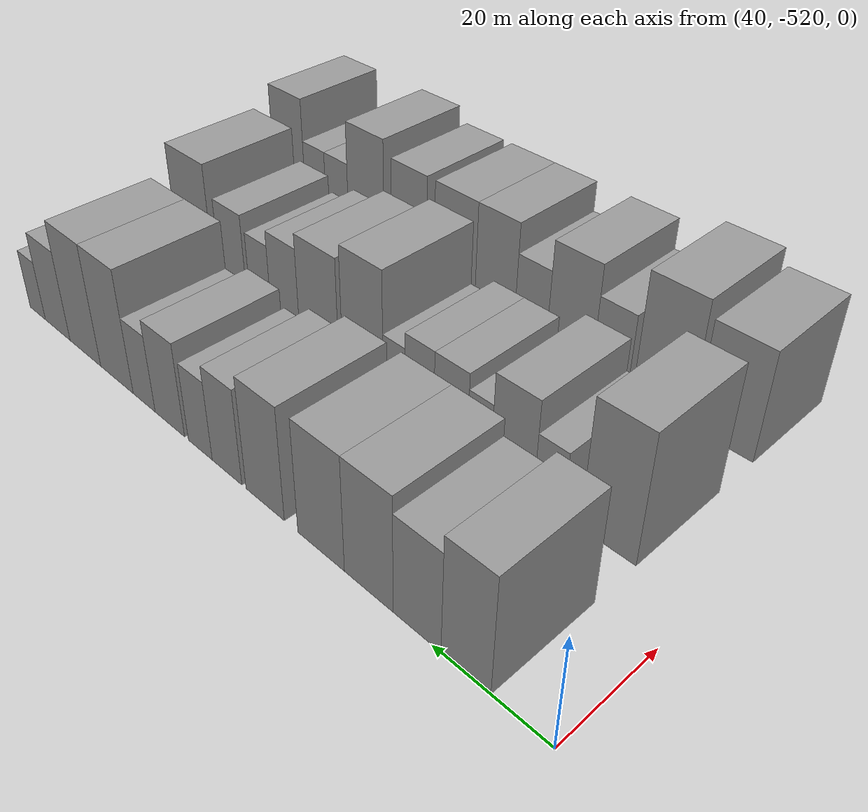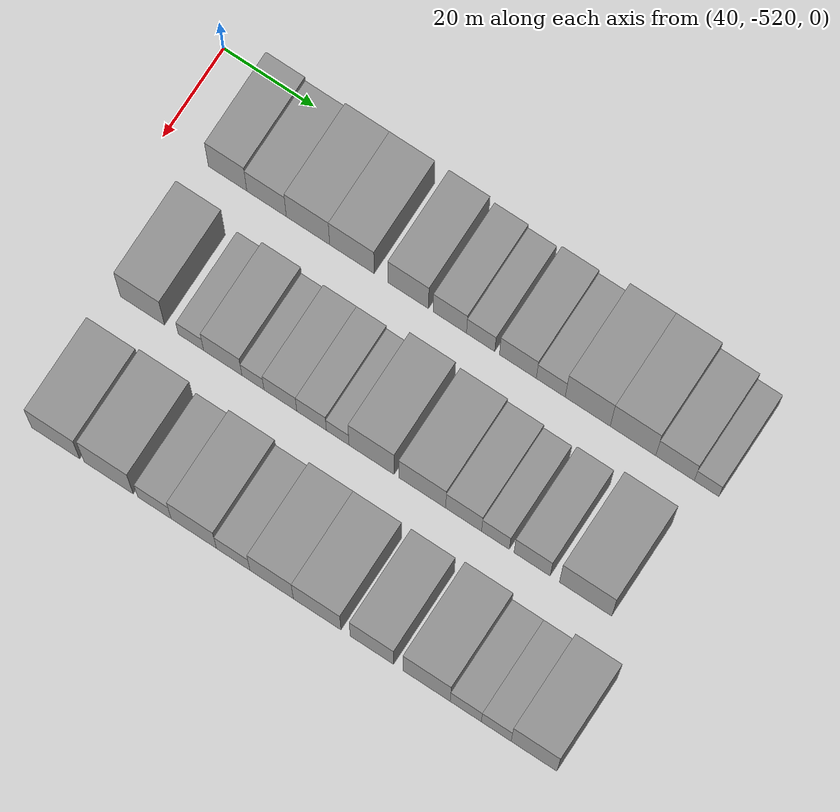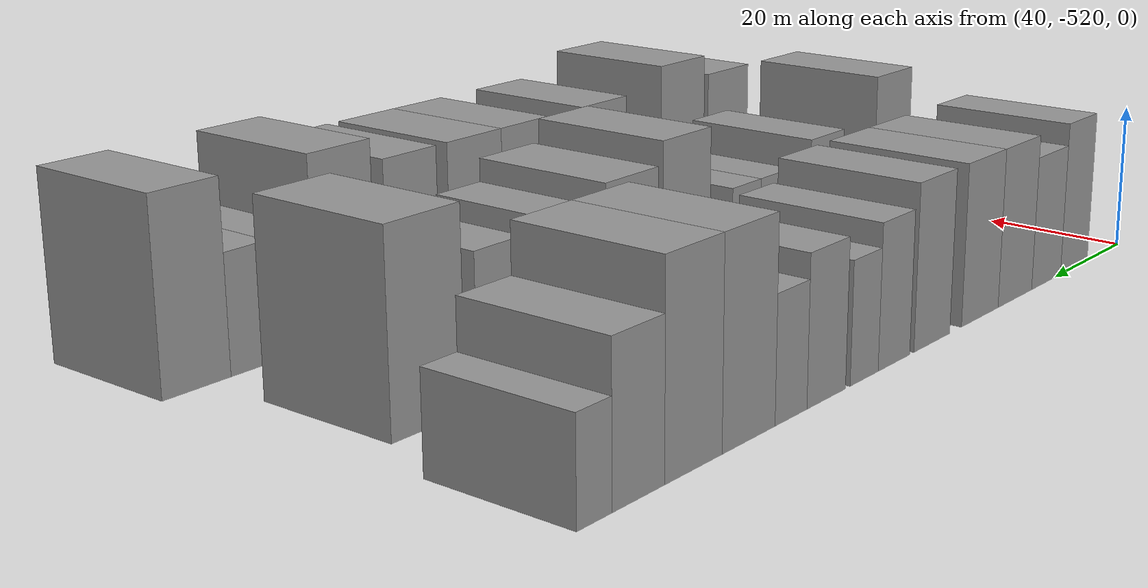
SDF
<sdf version="1.6">
 <world name="default">
  <model name="building_1">
   <static>1</static>
   <pose>50.0000 -505.7804 0 0.000000 0.000000 0.000000</pose>
   <link name="link">
    <pose>0 0 10.50 0 0 0</pose>
    <collision name="collision"><geometry><box><size>20.0000 8.4392 21.0000</size></box></geometry></collision>
    <visual name="visual">
     <cast_shadows>0</cast_shadows>
     <geometry><box><size>20.0000 8.4392 21.0000</size></box></geometry>
     <material>
      <script>
       <uri>model://grey_wall/materials/scripts</uri>
       <uri>model://grey_wall/materials/textures</uri>
       <name>vrc/grey_wall</name>
      </script>
     </material>
    </visual>
   </link>
  </model>
  <model name="building_2">
   <static>1</static>
   <pose>50.0000 -497.2267 0 0.000000 0.000000 0.000000</pose>
   <link name="link">
    <pose>0 0 9.00 0 0 0</pose>
    <collision name="collision"><geometry><box><size>20.0000 8.6683 18.0000</size></box></geometry></collision>
    <visual name="visual">
     <cast_shadows>0</cast_shadows>
     <geometry><box><size>20.0000 8.6683 18.0000</size></box></geometry>
     <material>
      <script>
       <uri>model://grey_wall/materials/scripts</uri>
       <uri>model://grey_wall/materials/textures</uri>
       <name>vrc/grey_wall</name>
      </script>
     </material>
    </visual>
   </link>
  </model>
  <model name="building_3">
   <static>1</static>
   <pose>50.0000 -488.1302 0 0.000000 0.000000 0.000000</pose>
   <link name="link">
    <pose>0 0 10.50 0 0 0</pose>
    <collision name="collision"><geometry><box><size>20.0000 9.5248 21.0000</size></box></geometry></collision>
    <visual name="visual">
     <cast_shadows>0</cast_shadows>
     <geometry><box><size>20.0000 9.5248 21.0000</size></box></geometry>
     <material>
      <script>
       <uri>model://grey_wall/materials/scripts</uri>
       <uri>model://grey_wall/materials/textures</uri>
       <name>vrc/grey_wall</name>
      </script>
     </material>
    </visual>
   </link>
  </model>
  <model name="building_4">
   <static>1</static>
   <pose>50.0000 -478.4753 0 0.000000 0.000000 0.000000</pose>
   <link name="link">
    <pose>0 0 10.50 0 0 0</pose>
    <collision name="collision"><geometry><box><size>20.0000 9.7850 21.0000</size></box></geometry></collision>
    <visual name="visual">
     <cast_shadows>0</cast_shadows>
     <geometry><box><size>20.0000 9.7850 21.0000</size></box></geometry>
     <material>
      <script>
       <uri>model://grey_wall/materials/scripts</uri>
       <uri>model://grey_wall/materials/textures</uri>
       <name>vrc/grey_wall</name>
      </script>
     </material>
    </visual>
   </link>
  </model>
  <model name="building_5">
   <static>1</static>
   <pose>50.0000 -466.1698 0 0.000000 0.000000 0.000000</pose>
   <link name="link">
    <pose>0 0 10.50 0 0 0</pose>
    <collision name="collision"><geometry><box><size>20.0000 8.8261 21.0000</size></box></geometry></collision>
    <visual name="visual">
     <cast_shadows>0</cast_shadows>
     <geometry><box><size>20.0000 8.8261 21.0000</size></box></geometry>
     <material>
      <script>
       <uri>model://grey_wall/materials/scripts</uri>
       <uri>model://grey_wall/materials/textures</uri>
       <name>vrc/grey_wall</name>
      </script>
     </material>
    </visual>
   </link>
  </model>
  <model name="building_6">
   <static>1</static>
   <pose>50.0000 -457.1109 0 0.000000 0.000000 0.000000</pose>
   <link name="link">
    <pose>0 0 9.00 0 0 0</pose>
    <collision name="collision"><geometry><box><size>20.0000 7.2916 18.0000</size></box></geometry></collision>
    <visual name="visual">
     <cast_shadows>0</cast_shadows>
     <geometry><box><size>20.0000 7.2916 18.0000</size></box></geometry>
     <material>
      <script>
       <uri>model://grey_wall/materials/scripts</uri>
       <uri>model://grey_wall/materials/textures</uri>
       <name>vrc/grey_wall</name>
      </script>
     </material>
    </visual>
   </link>
  </model>
  <model name="building_7">
   <static>1</static>
   <pose>50.0000 -450.3802 0 0.000000 0.000000 0.000000</pose>
   <link name="link">
    <pose>0 0 7.50 0 0 0</pose>
    <collision name="collision"><geometry><box><size>20.0000 6.1699 15.0000</size></box></geometry></collision>
    <visual name="visual">
     <cast_shadows>0</cast_shadows>
     <geometry><box><size>20.0000 6.1699 15.0000</size></box></geometry>
     <material>
      <script>
       <uri>model://grey_wall/materials/scripts</uri>
       <uri>model://grey_wall/materials/textures</uri>
       <name>vrc/grey_wall</name>
      </script>
     </material>
    </visual>
   </link>
  </model>
  <model name="building_8">
   <static>1</static>
   <pose>50.0000 -442.2879 0 0.000000 0.000000 0.000000</pose>
   <link name="link">
    <pose>0 0 9.00 0 0 0</pose>
    <collision name="collision"><geometry><box><size>20.0000 8.0148 18.0000</size></box></geometry></collision>
    <visual name="visual">
     <cast_shadows>0</cast_shadows>
     <geometry><box><size>20.0000 8.0148 18.0000</size></box></geometry>
     <material>
      <script>
       <uri>model://grey_wall/materials/scripts</uri>
       <uri>model://grey_wall/materials/textures</uri>
       <name>vrc/grey_wall</name>
      </script>
     </material>
    </visual>
   </link>
  </model>
  <model name="building_9">
   <static>1</static>
   <pose>50.0000 -435.1372 0 0.000000 0.000000 0.000000</pose>
   <link name="link">
    <pose>0 0 7.50 0 0 0</pose>
    <collision name="collision"><geometry><box><size>20.0000 6.2867 15.0000</size></box></geometry></collision>
    <visual name="visual">
     <cast_shadows>0</cast_shadows>
     <geometry><box><size>20.0000 6.2867 15.0000</size></box></geometry>
     <material>
      <script>
       <uri>model://grey_wall/materials/scripts</uri>
       <uri>model://grey_wall/materials/textures</uri>
       <name>vrc/grey_wall</name>
      </script>
     </material>
    </visual>
   </link>
  </model>
  <model name="building_10">
   <static>1</static>
   <pose>50.0000 -427.0935 0 0.000000 0.000000 0.000000</pose>
   <link name="link">
    <pose>0 0 12.00 0 0 0</pose>
    <collision name="collision"><geometry><box><size>20.0000 9.8006 24.0000</size></box></geometry></collision>
    <visual name="visual">
     <cast_shadows>0</cast_shadows>
     <geometry><box><size>20.0000 9.8006 24.0000</size></box></geometry>
     <material>
      <script>
       <uri>model://grey_wall/materials/scripts</uri>
       <uri>model://grey_wall/materials/textures</uri>
       <name>vrc/grey_wall</name>
      </script>
     </material>
    </visual>
   </link>
  </model>
  <model name="building_11">
   <static>1</static>
   <pose>50.0000 -417.2737 0 0.000000 0.000000 0.000000</pose>
   <link name="link">
    <pose>0 0 12.00 0 0 0</pose>
    <collision name="collision"><geometry><box><size>20.0000 9.8390 24.0000</size></box></geometry></collision>
    <visual name="visual">
     <cast_shadows>0</cast_shadows>
     <geometry><box><size>20.0000 9.8390 24.0000</size></box></geometry>
     <material>
      <script>
       <uri>model://grey_wall/materials/scripts</uri>
       <uri>model://grey_wall/materials/textures</uri>
       <name>vrc/grey_wall</name>
      </script>
     </material>
    </visual>
   </link>
  </model>
  <model name="building_12">
   <static>1</static>
   <pose>50.0000 -408.1813 0 0.000000 0.000000 0.000000</pose>
   <link name="link">
    <pose>0 0 9.00 0 0 0</pose>
    <collision name="collision"><geometry><box><size>20.0000 8.3459 18.0000</size></box></geometry></collision>
    <visual name="visual">
     <cast_shadows>0</cast_shadows>
     <geometry><box><size>20.0000 8.3459 18.0000</size></box></geometry>
     <material>
      <script>
       <uri>model://grey_wall/materials/scripts</uri>
       <uri>model://grey_wall/materials/textures</uri>
       <name>vrc/grey_wall</name>
      </script>
     </material>
    </visual>
   </link>
  </model>
  <model name="building_13">
   <static>1</static>
   <pose>50.0000 -401.3410 0 0.000000 0.000000 0.000000</pose>
   <link name="link">
    <pose>0 0 6.00 0 0 0</pose>
    <collision name="collision"><geometry><box><size>20.0000 5.3347 12.0000</size></box></geometry></collision>
    <visual name="visual">
     <cast_shadows>0</cast_shadows>
     <geometry><box><size>20.0000 5.3347 12.0000</size></box></geometry>
     <material>
      <script>
       <uri>model://grey_wall/materials/scripts</uri>
       <uri>model://grey_wall/materials/textures</uri>
       <name>vrc/grey_wall</name>
      </script>
     </material>
    </visual>
   </link>
  </model>
  <model name="building_113">
   <static>1</static>
   <pose>79.0000 -505.1575 0 0.000000 0.000000 0.000000</pose>
   <link name="link">
    <pose>0 0 12.00 0 0 0</pose>
    <collision name="collision"><geometry><box><size>20.0000 9.6850 24.0000</size></box></geometry></collision>
    <visual name="visual">
     <cast_shadows>0</cast_shadows>
     <geometry><box><size>20.0000 9.6850 24.0000</size></box></geometry>
     <material>
      <script>
       <uri>model://grey_wall/materials/scripts</uri>
       <uri>model://grey_wall/materials/textures</uri>
       <name>vrc/grey_wall</name>
      </script>
     </material>
    </visual>
   </link>
  </model>
  <model name="building_114">
   <static>1</static>
   <pose>79.0000 -494.5348 0 0.000000 0.000000 0.000000</pose>
   <link name="link">
    <pose>0 0 6.00 0 0 0</pose>
    <collision name="collision"><geometry><box><size>20.0000 5.5605 12.0000</size></box></geometry></collision>
    <visual name="visual">
     <cast_shadows>0</cast_shadows>
     <geometry><box><size>20.0000 5.5605 12.0000</size></box></geometry>
     <material>
      <script>
       <uri>model://grey_wall/materials/scripts</uri>
       <uri>model://grey_wall/materials/textures</uri>
       <name>vrc/grey_wall</name>
      </script>
     </material>
    </visual>
   </link>
  </model>
  <model name="building_115">
   <static>1</static>
   <pose>79.0000 -487.5639 0 0.000000 0.000000 0.000000</pose>
   <link name="link">
    <pose>0 0 9.00 0 0 0</pose>
    <collision name="collision"><geometry><box><size>20.0000 8.3813 18.0000</size></box></geometry></collision>
    <visual name="visual">
     <cast_shadows>0</cast_shadows>
     <geometry><box><size>20.0000 8.3813 18.0000</size></box></geometry>
     <material>
      <script>
       <uri>model://grey_wall/materials/scripts</uri>
       <uri>model://grey_wall/materials/textures</uri>
       <name>vrc/grey_wall</name>
      </script>
     </material>
    </visual>
   </link>
  </model>
  <model name="building_116">
   <static>1</static>
   <pose>79.0000 -480.9613 0 0.000000 0.000000 0.000000</pose>
   <link name="link">
    <pose>0 0 6.00 0 0 0</pose>
    <collision name="collision"><geometry><box><size>20.0000 4.8240 12.0000</size></box></geometry></collision>
    <visual name="visual">
     <cast_shadows>0</cast_shadows>
     <geometry><box><size>20.0000 4.8240 12.0000</size></box></geometry>
     <material>
      <script>
       <uri>model://grey_wall/materials/scripts</uri>
       <uri>model://grey_wall/materials/textures</uri>
       <name>vrc/grey_wall</name>
      </script>
     </material>
    </visual>
   </link>
  </model>
  <model name="building_117">
   <static>1</static>
   <pose>79.0000 -474.9723 0 0.000000 0.000000 0.000000</pose>
   <link name="link">
    <pose>0 0 7.50 0 0 0</pose>
    <collision name="collision"><geometry><box><size>20.0000 7.1540 15.0000</size></box></geometry></collision>
    <visual name="visual">
     <cast_shadows>0</cast_shadows>
     <geometry><box><size>20.0000 7.1540 15.0000</size></box></geometry>
     <material>
      <script>
       <uri>model://grey_wall/materials/scripts</uri>
       <uri>model://grey_wall/materials/textures</uri>
       <name>vrc/grey_wall</name>
      </script>
     </material>
    </visual>
   </link>
  </model>
  <model name="building_118">
   <static>1</static>
   <pose>79.0000 -468.1647 0 0.000000 0.000000 0.000000</pose>
   <link name="link">
    <pose>0 0 7.50 0 0 0</pose>
    <collision name="collision"><geometry><box><size>20.0000 6.4611 15.0000</size></box></geometry></collision>
    <visual name="visual">
     <cast_shadows>0</cast_shadows>
     <geometry><box><size>20.0000 6.4611 15.0000</size></box></geometry>
     <material>
      <script>
       <uri>model://grey_wall/materials/scripts</uri>
       <uri>model://grey_wall/materials/textures</uri>
       <name>vrc/grey_wall</name>
      </script>
     </material>
    </visual>
   </link>
  </model>
  <model name="building_119">
   <static>1</static>
   <pose>79.0000 -462.4666 0 0.000000 0.000000 0.000000</pose>
   <link name="link">
    <pose>0 0 6.00 0 0 0</pose>
    <collision name="collision"><geometry><box><size>20.0000 4.9352 12.0000</size></box></geometry></collision>
    <visual name="visual">
     <cast_shadows>0</cast_shadows>
     <geometry><box><size>20.0000 4.9352 12.0000</size></box></geometry>
     <material>
      <script>
       <uri>model://grey_wall/materials/scripts</uri>
       <uri>model://grey_wall/materials/textures</uri>
       <name>vrc/grey_wall</name>
      </script>
     </material>
    </visual>
   </link>
  </model>
  <model name="building_120">
   <static>1</static>
   <pose>79.0000 -455.0817 0 0.000000 0.000000 0.000000</pose>
   <link name="link">
    <pose>0 0 12.00 0 0 0</pose>
    <collision name="collision"><geometry><box><size>20.0000 9.8345 24.0000</size></box></geometry></collision>
    <visual name="visual">
     <cast_shadows>0</cast_shadows>
     <geometry><box><size>20.0000 9.8345 24.0000</size></box></geometry>
     <material>
      <script>
       <uri>model://grey_wall/materials/scripts</uri>
       <uri>model://grey_wall/materials/textures</uri>
       <name>vrc/grey_wall</name>
      </script>
     </material>
    </visual>
   </link>
  </model>
  <model name="building_121">
   <static>1</static>
   <pose>79.0000 -444.0837 0 0.000000 0.000000 0.000000</pose>
   <link name="link">
    <pose>0 0 10.50 0 0 0</pose>
    <collision name="collision"><geometry><box><size>20.0000 10.1616 21.0000</size></box></geometry></collision>
    <visual name="visual">
     <cast_shadows>0</cast_shadows>
     <geometry><box><size>20.0000 10.1616 21.0000</size></box></geometry>
     <material>
      <script>
       <uri>model://grey_wall/materials/scripts</uri>
       <uri>model://grey_wall/materials/textures</uri>
       <name>vrc/grey_wall</name>
      </script>
     </material>
    </visual>
   </link>
  </model>
  <model name="building_122">
   <static>1</static>
   <pose>79.0000 -435.1105 0 0.000000 0.000000 0.000000</pose>
   <link name="link">
    <pose>0 0 9.00 0 0 0</pose>
    <collision name="collision"><geometry><box><size>20.0000 7.7848 18.0000</size></box></geometry></collision>
    <visual name="visual">
     <cast_shadows>0</cast_shadows>
     <geometry><box><size>20.0000 7.7848 18.0000</size></box></geometry>
     <material>
      <script>
       <uri>model://grey_wall/materials/scripts</uri>
       <uri>model://grey_wall/materials/textures</uri>
       <name>vrc/grey_wall</name>
      </script>
     </material>
    </visual>
   </link>
  </model>
  <model name="building_123">
   <static>1</static>
   <pose>79.0000 -428.2041 0 0.000000 0.000000 0.000000</pose>
   <link name="link">
    <pose>0 0 7.50 0 0 0</pose>
    <collision name="collision"><geometry><box><size>20.0000 6.0279 15.0000</size></box></geometry></collision>
    <visual name="visual">
     <cast_shadows>0</cast_shadows>
     <geometry><box><size>20.0000 6.0279 15.0000</size></box></geometry>
     <material>
      <script>
       <uri>model://grey_wall/materials/scripts</uri>
       <uri>model://grey_wall/materials/textures</uri>
       <name>vrc/grey_wall</name>
      </script>
     </material>
    </visual>
   </link>
  </model>
  <model name="building_124">
   <static>1</static>
   <pose>79.0000 -420.2808 0 0.000000 0.000000 0.000000</pose>
   <link name="link">
    <pose>0 0 9.00 0 0 0</pose>
    <collision name="collision"><geometry><box><size>20.0000 7.8188 18.0000</size></box></geometry></collision>
    <visual name="visual">
     <cast_shadows>0</cast_shadows>
     <geometry><box><size>20.0000 7.8188 18.0000</size></box></geometry>
     <material>
      <script>
       <uri>model://grey_wall/materials/scripts</uri>
       <uri>model://grey_wall/materials/textures</uri>
       <name>vrc/grey_wall</name>
      </script>
     </material>
    </visual>
   </link>
  </model>
  <model name="building_125">
   <static>1</static>
   <pose>79.0000 -408.7223 0 0.000000 0.000000 0.000000</pose>
   <link name="link">
    <pose>0 0 12.00 0 0 0</pose>
    <collision name="collision"><geometry><box><size>20.0000 11.2983 24.0000</size></box></geometry></collision>
    <visual name="visual">
     <cast_shadows>0</cast_shadows>
     <geometry><box><size>20.0000 11.2983 24.0000</size></box></geometry>
     <material>
      <script>
       <uri>model://grey_wall/materials/scripts</uri>
       <uri>model://grey_wall/materials/textures</uri>
       <name>vrc/grey_wall</name>
      </script>
     </material>
    </visual>
   </link>
  </model>
  <model name="building_226">
   <static>1</static>
   <pose>108.0000 -504.7560 0 0.000000 0.000000 0.000000</pose>
   <link name="link">
    <pose>0 0 10.50 0 0 0</pose>
    <collision name="collision"><geometry><box><size>20.0000 10.4881 21.0000</size></box></geometry></collision>
    <visual name="visual">
     <cast_shadows>0</cast_shadows>
     <geometry><box><size>20.0000 10.4881 21.0000</size></box></geometry>
     <material>
      <script>
       <uri>model://grey_wall/materials/scripts</uri>
       <uri>model://grey_wall/materials/textures</uri>
       <name>vrc/grey_wall</name>
      </script>
     </material>
    </visual>
   </link>
  </model>
  <model name="building_227">
   <static>1</static>
   <pose>108.0000 -493.1572 0 0.000000 0.000000 0.000000</pose>
   <link name="link">
    <pose>0 0 12.00 0 0 0</pose>
    <collision name="collision"><geometry><box><size>20.0000 10.7094 24.0000</size></box></geometry></collision>
    <visual name="visual">
     <cast_shadows>0</cast_shadows>
     <geometry><box><size>20.0000 10.7094 24.0000</size></box></geometry>
     <material>
      <script>
       <uri>model://grey_wall/materials/scripts</uri>
       <uri>model://grey_wall/materials/textures</uri>
       <name>vrc/grey_wall</name>
      </script>
     </material>
    </visual>
   </link>
  </model>
  <model name="building_228">
   <static>1</static>
   <pose>108.0000 -483.1496 0 0.000000 0.000000 0.000000</pose>
   <link name="link">
    <pose>0 0 7.50 0 0 0</pose>
    <collision name="collision"><geometry><box><size>20.0000 7.3059 15.0000</size></box></geometry></collision>
    <visual name="visual">
     <cast_shadows>0</cast_shadows>
     <geometry><box><size>20.0000 7.3059 15.0000</size></box></geometry>
     <material>
      <script>
       <uri>model://grey_wall/materials/scripts</uri>
       <uri>model://grey_wall/materials/textures</uri>
       <name>vrc/grey_wall</name>
      </script>
     </material>
    </visual>
   </link>
  </model>
  <model name="building_229">
   <static>1</static>
   <pose>108.0000 -474.5673 0 0.000000 0.000000 0.000000</pose>
   <link name="link">
    <pose>0 0 10.50 0 0 0</pose>
    <collision name="collision"><geometry><box><size>20.0000 9.8587 21.0000</size></box></geometry></collision>
    <visual name="visual">
     <cast_shadows>0</cast_shadows>
     <geometry><box><size>20.0000 9.8587 21.0000</size></box></geometry>
     <material>
      <script>
       <uri>model://grey_wall/materials/scripts</uri>
       <uri>model://grey_wall/materials/textures</uri>
       <name>vrc/grey_wall</name>
      </script>
     </material>
    </visual>
   </link>
  </model>
  <model name="building_230">
   <static>1</static>
   <pose>108.0000 -465.9992 0 0.000000 0.000000 0.000000</pose>
   <link name="link">
    <pose>0 0 7.50 0 0 0</pose>
    <collision name="collision"><geometry><box><size>20.0000 7.2774 15.0000</size></box></geometry></collision>
    <visual name="visual">
     <cast_shadows>0</cast_shadows>
     <geometry><box><size>20.0000 7.2774 15.0000</size></box></geometry>
     <material>
      <script>
       <uri>model://grey_wall/materials/scripts</uri>
       <uri>model://grey_wall/materials/textures</uri>
       <name>vrc/grey_wall</name>
      </script>
     </material>
    </visual>
   </link>
  </model>
  <model name="building_231">
   <static>1</static>
   <pose>108.0000 -457.6447 0 0.000000 0.000000 0.000000</pose>
   <link name="link">
    <pose>0 0 10.50 0 0 0</pose>
    <collision name="collision"><geometry><box><size>20.0000 9.4317 21.0000</size></box></geometry></collision>
    <visual name="visual">
     <cast_shadows>0</cast_shadows>
     <geometry><box><size>20.0000 9.4317 21.0000</size></box></geometry>
     <material>
      <script>
       <uri>model://grey_wall/materials/scripts</uri>
       <uri>model://grey_wall/materials/textures</uri>
       <name>vrc/grey_wall</name>
      </script>
     </material>
    </visual>
   </link>
  </model>
  <model name="building_232">
   <static>1</static>
   <pose>108.0000 -447.7664 0 0.000000 0.000000 0.000000</pose>
   <link name="link">
    <pose>0 0 10.50 0 0 0</pose>
    <collision name="collision"><geometry><box><size>20.0000 10.3249 21.0000</size></box></geometry></collision>
    <visual name="visual">
     <cast_shadows>0</cast_shadows>
     <geometry><box><size>20.0000 10.3249 21.0000</size></box></geometry>
     <material>
      <script>
       <uri>model://grey_wall/materials/scripts</uri>
       <uri>model://grey_wall/materials/textures</uri>
       <name>vrc/grey_wall</name>
      </script>
     </material>
    </visual>
   </link>
  </model>
  <model name="building_233">
   <static>1</static>
   <pose>108.0000 -435.9049 0 0.000000 0.000000 0.000000</pose>
   <link name="link">
    <pose>0 0 10.50 0 0 0</pose>
    <collision name="collision"><geometry><box><size>20.0000 9.3981 21.0000</size></box></geometry></collision>
    <visual name="visual">
     <cast_shadows>0</cast_shadows>
     <geometry><box><size>20.0000 9.3981 21.0000</size></box></geometry>
     <material>
      <script>
       <uri>model://grey_wall/materials/scripts</uri>
       <uri>model://grey_wall/materials/textures</uri>
       <name>vrc/grey_wall</name>
      </script>
     </material>
    </visual>
   </link>
  </model>
  <model name="building_234">
   <static>1</static>
   <pose>108.0000 -424.1078 0 0.000000 0.000000 0.000000</pose>
   <link name="link">
    <pose>0 0 12.00 0 0 0</pose>
    <collision name="collision"><geometry><box><size>20.0000 10.1962 24.0000</size></box></geometry></collision>
    <visual name="visual">
     <cast_shadows>0</cast_shadows>
     <geometry><box><size>20.0000 10.1962 24.0000</size></box></geometry>
     <material>
      <script>
       <uri>model://grey_wall/materials/scripts</uri>
       <uri>model://grey_wall/materials/textures</uri>
       <name>vrc/grey_wall</name>
      </script>
     </material>
    </visual>
   </link>
  </model>
  <model name="building_235">
   <static>1</static>
   <pose>108.0000 -415.6591 0 0.000000 0.000000 0.000000</pose>
   <link name="link">
    <pose>0 0 7.50 0 0 0</pose>
    <collision name="collision"><geometry><box><size>20.0000 6.7012 15.0000</size></box></geometry></collision>
    <visual name="visual">
     <cast_shadows>0</cast_shadows>
     <geometry><box><size>20.0000 6.7012 15.0000</size></box></geometry>
     <material>
      <script>
       <uri>model://grey_wall/materials/scripts</uri>
       <uri>model://grey_wall/materials/textures</uri>
       <name>vrc/grey_wall</name>
      </script>
     </material>
    </visual>
   </link>
  </model>
  <model name="building_236">
   <static>1</static>
   <pose>108.0000 -409.0995 0 0.000000 0.000000 0.000000</pose>
   <link name="link">
    <pose>0 0 7.50 0 0 0</pose>
    <collision name="collision"><geometry><box><size>20.0000 6.4179 15.0000</size></box></geometry></collision>
    <visual name="visual">
     <cast_shadows>0</cast_shadows>
     <geometry><box><size>20.0000 6.4179 15.0000</size></box></geometry>
     <material>
      <script>
       <uri>model://grey_wall/materials/scripts</uri>
       <uri>model://grey_wall/materials/textures</uri>
       <name>vrc/grey_wall</name>
      </script>
     </material>
    </visual>
   </link>
  </model>
  <model name="building_237">
   <static>1</static>
   <pose>108.0000 -400.9648 0 0.000000 0.000000 0.000000</pose>
   <link name="link">
    <pose>0 0 12.00 0 0 0</pose>
    <collision name="collision"><geometry><box><size>20.0000 9.8515 24.0000</size></box></geometry></collision>
    <visual name="visual">
     <cast_shadows>0</cast_shadows>
     <geometry><box><size>20.0000 9.8515 24.0000</size></box></geometry>
     <material>
      <script>
       <uri>model://grey_wall/materials/scripts</uri>
       <uri>model://grey_wall/materials/textures</uri>
       <name>vrc/grey_wall</name>
      </script>
     </material>
    </visual>
   </link>
  </model>
 </world>
</sdf>
